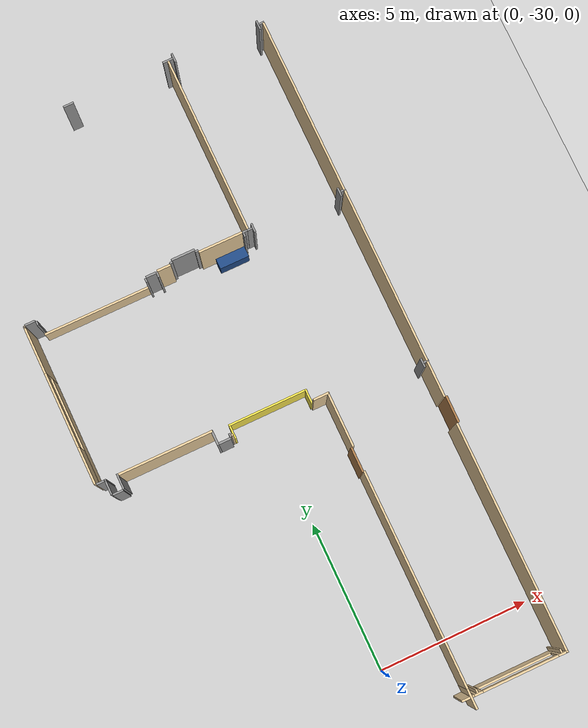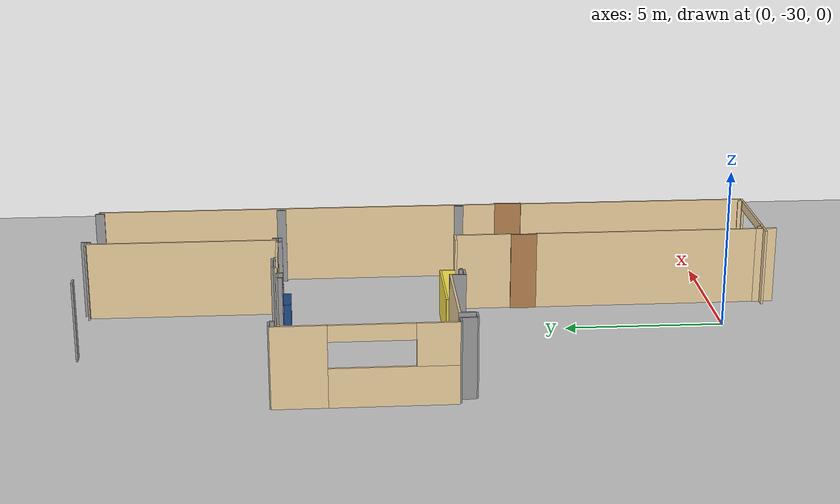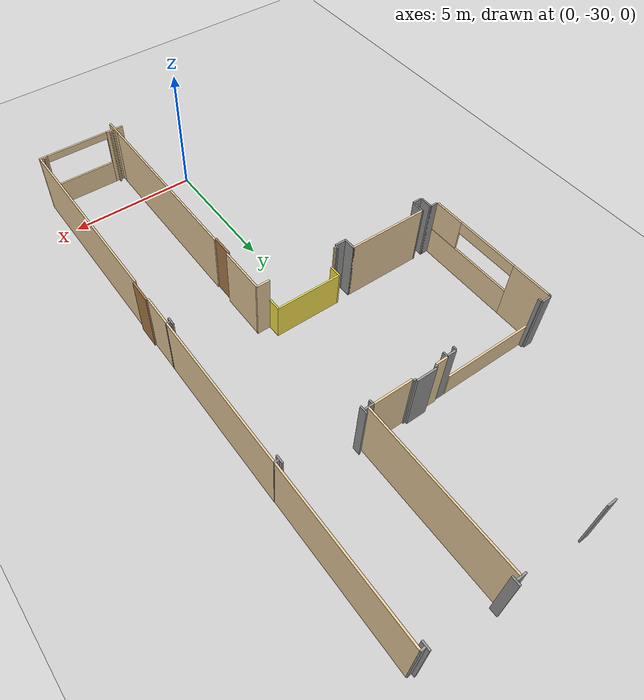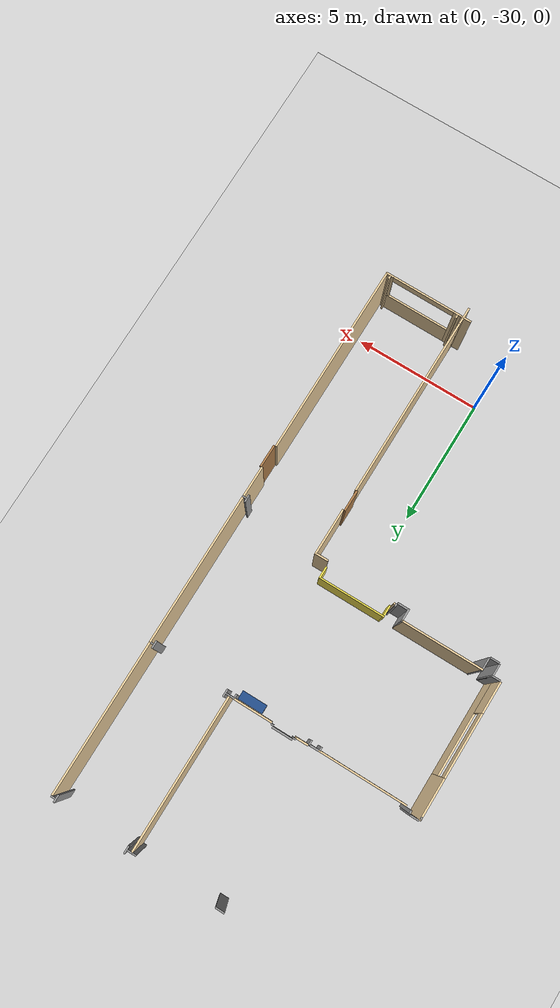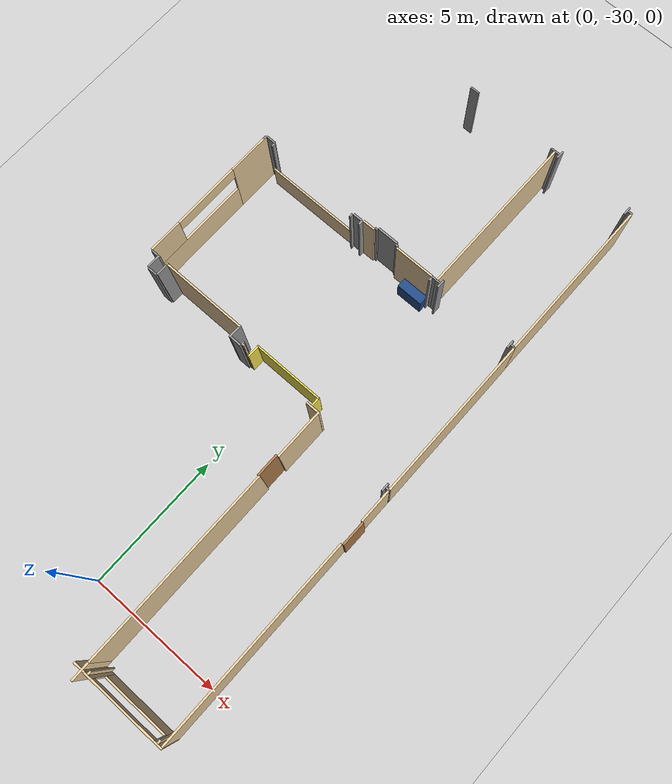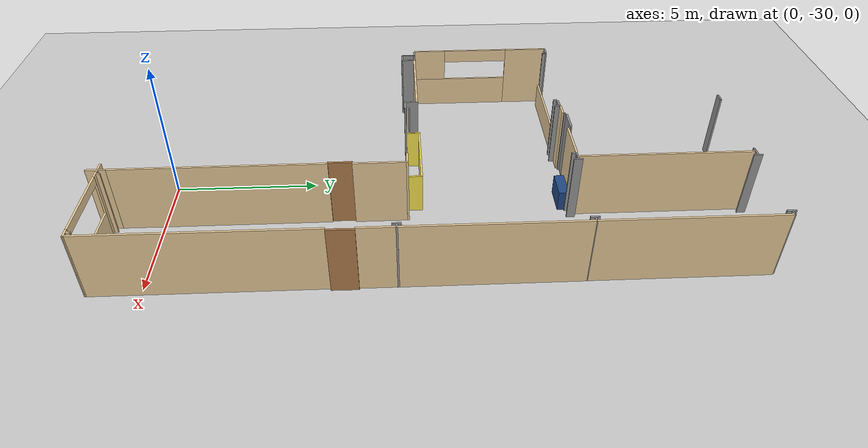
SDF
<sdf version="1.7">
 <world name="default">
  <model name="ground_plane">
   <static>1</static>
   <link name="link">
    <collision name="collision">
     <geometry><plane><normal>0 0 1</normal><size>100 100</size></plane></geometry>
     <surface>
      <contact><collide_bitmask>65535</collide_bitmask></contact>
      <friction><ode><mu>100</mu><mu2>50</mu2></ode></friction>
     </surface>
    </collision>
    <visual name="visual">
     <cast_shadows>0</cast_shadows>
     <geometry><plane><normal>0 0 1</normal><size>100 100</size></plane></geometry>
     <material>
      <script><uri>file://media/materials/scripts/gazebo.material</uri><name>Gazebo/Grey</name></script>
     </material>
    </visual>
   </link>
  </model>
  <model name="Fakulte_koridor">
   <pose>-0.108629 -0.105707 0 0 -0 0</pose>
   <link name="Wall_19">
    <collision name="Wall_19_Collision">
     <geometry><box><size>0.888609 0.07 2.5</size></box></geometry>
     <pose>0 0 1.25 0 -0 0</pose>
    </collision>
    <visual name="Wall_19_Visual">
     <pose>0 0 1.25 0 -0 0</pose>
     <geometry><box><size>0.888609 0.07 2.5</size></box></geometry>
     <material>
      <script><uri>file://media/materials/scripts/gazebo.material</uri><name>Gazebo/Wood</name></script>
      <ambient>1 1 1 1</ambient>
     </material>
     <meta><layer>0</layer></meta>
    </visual>
    <pose>5.37182 -23.6049 0 0 -0 1.56296</pose>
   </link>
   <link name="Wall_25">
    <collision name="Wall_25_Collision">
     <geometry><box><size>1.20759 0.07 2.5</size></box></geometry>
     <pose>0 0 1.25 0 -0 0</pose>
    </collision>
    <visual name="Wall_25_Visual">
     <pose>0 0 1.25 0 -0 0</pose>
     <geometry><box><size>1.20759 0.07 2.5</size></box></geometry>
     <material>
      <script><uri>file://media/materials/scripts/gazebo.material</uri><name>Gazebo/Grey</name></script>
      <ambient>0.921569 0.807843 0.615686 1</ambient>
     </material>
     <meta><layer>0</layer></meta>
    </visual>
    <pose>5.31964 -22.5654 0 0 -0 1.56914</pose>
   </link>
   <link name="Wall_3">
    <pose>3.77784 -31.5921 0 0 -0 -0.00309</pose>
    <visual name="Wall_3_Visual_0">
     <pose>-1.40844 0 1.25 0 -0 0</pose>
     <geometry><box><size>0.287186 0.07 2.5</size></box></geometry>
     <material>
      <script><uri>file://media/materials/scripts/gazebo.material</uri><name>Gazebo/Grey</name></script>
      <ambient>0.921569 0.807843 0.615686 1</ambient>
     </material>
     <meta><layer>0</layer></meta>
    </visual>
    <collision name="Wall_3_Collision_0">
     <geometry><box><size>0.287186 0.07 2.5</size></box></geometry>
     <pose>-1.40844 0 1.25 0 -0 0</pose>
    </collision>
    <visual name="Wall_3_Visual_1">
     <pose>0.143593 0 0.5 0 -0 0</pose>
     <geometry><box><size>2.81688 0.07 1</size></box></geometry>
     <material>
      <script><uri>file://media/materials/scripts/gazebo.material</uri><name>Gazebo/Grey</name></script>
      <ambient>0.921569 0.807843 0.615686 1</ambient>
     </material>
     <meta><layer>0</layer></meta>
    </visual>
    <collision name="Wall_3_Collision_1">
     <geometry><box><size>2.81688 0.07 1</size></box></geometry>
     <pose>0.143593 0 0.5 0 -0 0</pose>
    </collision>
    <visual name="Wall_3_Visual_2">
     <pose>1.39359 0 1.75 0 -0 0</pose>
     <geometry><box><size>0.316883 0.07 1.5</size></box></geometry>
     <material>
      <script><uri>file://media/materials/scripts/gazebo.material</uri><name>Gazebo/Grey</name></script>
      <ambient>0.921569 0.807843 0.615686 1</ambient>
     </material>
     <meta><layer>0</layer></meta>
    </visual>
    <collision name="Wall_3_Collision_2">
     <geometry><box><size>0.316883 0.07 1.5</size></box></geometry>
     <pose>1.39359 0 1.75 0 -0 0</pose>
    </collision>
    <visual name="Wall_3_Visual_3">
     <pose>-0.014849 0 2.35 0 -0 0</pose>
     <geometry><box><size>2.5 0.07 0.3</size></box></geometry>
     <material>
      <script><uri>file://media/materials/scripts/gazebo.material</uri><name>Gazebo/Grey</name></script>
      <ambient>0.921569 0.807843 0.615686 1</ambient>
     </material>
     <meta><layer>0</layer></meta>
    </visual>
    <collision name="Wall_3_Collision_3">
     <geometry><box><size>2.5 0.07 0.3</size></box></geometry>
     <pose>-0.014849 0 2.35 0 -0 0</pose>
    </collision>
   </link>
   <link name="Wall_34">
    <collision name="Wall_34_Collision">
     <geometry><box><size>0.299516 0.06 2.5</size></box></geometry>
     <pose>0 0 1.25 0 -0 0</pose>
    </collision>
    <visual name="Wall_34_Visual">
     <pose>0 0 1.25 0 -0 0</pose>
     <geometry><box><size>0.299516 0.06 2.5</size></box></geometry>
     <material>
      <script><uri>file://media/materials/scripts/gazebo.material</uri><name>Gazebo/Grey</name></script>
      <ambient>0.180392 0.203922 0.211765 1</ambient>
     </material>
     <meta><layer>0</layer></meta>
    </visual>
    <pose>5.17391 -21.9441 0 0 -0 -1.56569</pose>
   </link>
   <link name="Wall_346">
    <collision name="Wall_346_Collision">
     <geometry><box><size>0.175 0.06 2.5</size></box></geometry>
     <pose>0 0 1.25 0 -0 0</pose>
    </collision>
    <visual name="Wall_346_Visual">
     <pose>0 0 1.25 0 -0 0</pose>
     <geometry><box><size>0.175 0.06 2.5</size></box></geometry>
     <material>
      <script><uri>file://media/materials/scripts/gazebo.material</uri><name>Gazebo/Grey</name></script>
      <ambient>0.180392 0.203922 0.211765 1</ambient>
     </material>
     <meta><layer>0</layer></meta>
    </visual>
    <pose>5.27589 -21.9384 0 0 -0 0</pose>
   </link>
   <link name="Wall_38">
    <collision name="Wall_38_Collision">
     <geometry><box><size>5.9249 0.07 2.5</size></box></geometry>
     <pose>0 0 1.25 0 -0 0</pose>
    </collision>
    <visual name="Wall_38_Visual">
     <pose>0 0 1.25 0 -0 0</pose>
     <geometry><box><size>5.9249 0.07 2.5</size></box></geometry>
     <material>
      <script><uri>file://media/materials/scripts/gazebo.material</uri><name>Gazebo/Grey</name></script>
      <ambient>0.921569 0.807843 0.615686 1</ambient>
     </material>
     <meta><layer>0</layer></meta>
    </visual>
    <pose>5.3251 -18.9749 0 0 -0 1.57052</pose>
   </link>
   <link name="Wall_380">
    <collision name="Wall_380_Collision">
     <geometry><box><size>0.35 0.06 2.5</size></box></geometry>
     <pose>0 0 1.25 0 -0 0</pose>
    </collision>
    <visual name="Wall_380_Visual">
     <pose>0 0 1.25 0 -0 0</pose>
     <geometry><box><size>0.35 0.06 2.5</size></box></geometry>
     <material>
      <script><uri>file://media/materials/scripts/gazebo.material</uri><name>Gazebo/Grey</name></script>
      <ambient>1 1 1 1</ambient>
     </material>
     <meta><layer>0</layer></meta>
    </visual>
    <pose>-1.34421 -9.88463 0 0 -0 0</pose>
   </link>
   <link name="Wall_388">
    <collision name="Wall_388_Collision">
     <geometry><box><size>0.35 0.06 2.5</size></box></geometry>
     <pose>0 0 1.25 0 -0 0</pose>
    </collision>
    <visual name="Wall_388_Visual">
     <pose>0 0 1.25 0 -0 0</pose>
     <geometry><box><size>0.35 0.06 2.5</size></box></geometry>
     <material>
      <script><uri>file://media/materials/scripts/gazebo.material</uri><name>Gazebo/Grey</name></script>
      <ambient>0.180392 0.203922 0.211765 1</ambient>
     </material>
     <meta><layer>0</layer></meta>
    </visual>
    <pose>2.07737 -9.89165 0 0 -0 0</pose>
   </link>
   <link name="Wall_390">
    <collision name="Wall_390_Collision">
     <geometry><box><size>0.3 0.06 2.5</size></box></geometry>
     <pose>0 0 1.25 0 -0 0</pose>
    </collision>
    <visual name="Wall_390_Visual">
     <pose>0 0 1.25 0 -0 0</pose>
     <geometry><box><size>0.3 0.06 2.5</size></box></geometry>
     <material>
      <script><uri>file://media/materials/scripts/gazebo.material</uri><name>Gazebo/Grey</name></script>
      <ambient>0.180392 0.203922 0.211765 1</ambient>
     </material>
     <meta><layer>0</layer></meta>
    </visual>
    <pose>2.27698 -9.88557 0 0 -0 -1.5708</pose>
   </link>
   <link name="Wall_392">
    <collision name="Wall_392_Collision">
     <geometry><box><size>5.995 0.07 2.5</size></box></geometry>
     <pose>0 0 1.25 0 -0 0</pose>
    </collision>
    <visual name="Wall_392_Visual">
     <pose>0 0 1.25 0 -0 0</pose>
     <geometry><box><size>5.995 0.07 2.5</size></box></geometry>
     <material>
      <script><uri>file://media/materials/scripts/gazebo.material</uri><name>Gazebo/Grey</name></script>
      <ambient>0.921569 0.807843 0.615686 1</ambient>
     </material>
     <meta><layer>0</layer></meta>
    </visual>
    <pose>2.07946 -12.8935 0 0 -0 -1.5708</pose>
   </link>
   <link name="Wall_394">
    <collision name="Wall_394_Collision">
     <geometry><box><size>0.175 0.06 2.5</size></box></geometry>
     <pose>0 0 1.25 0 -0 0</pose>
    </collision>
    <visual name="Wall_394_Visual">
     <pose>0 0 1.25 0 -0 0</pose>
     <geometry><box><size>0.175 0.06 2.5</size></box></geometry>
     <material>
      <script><uri>file://media/materials/scripts/gazebo.material</uri><name>Gazebo/Grey</name></script>
      <ambient>0.180392 0.203922 0.211765 1</ambient>
     </material>
     <meta><layer>0</layer></meta>
    </visual>
    <pose>2.13087 -15.9072 0 0 -0 0</pose>
   </link>
   <link name="Wall_396">
    <collision name="Wall_396_Collision">
     <geometry><box><size>0.3 0.06 2.5</size></box></geometry>
     <pose>0 0 1.25 0 -0 0</pose>
    </collision>
    <visual name="Wall_396_Visual">
     <pose>0 0 1.25 0 -0 0</pose>
     <geometry><box><size>0.3 0.06 2.5</size></box></geometry>
     <material>
      <script><uri>file://media/materials/scripts/gazebo.material</uri><name>Gazebo/Grey</name></script>
      <ambient>0.180392 0.203922 0.211765 1</ambient>
     </material>
     <meta><layer>0</layer></meta>
    </visual>
    <pose>2.24681 -15.9111 0 0 -0 -1.5708</pose>
   </link>
   <link name="Wall_398">
    <collision name="Wall_398_Collision">
     <geometry><box><size>0.175 0.06 2.5</size></box></geometry>
     <pose>0 0 1.25 0 -0 0</pose>
    </collision>
    <visual name="Wall_398_Visual">
     <pose>0 0 1.25 0 -0 0</pose>
     <geometry><box><size>0.175 0.06 2.5</size></box></geometry>
     <material>
      <script><uri>file://media/materials/scripts/gazebo.material</uri><name>Gazebo/Grey</name></script>
      <ambient>0.180392 0.203922 0.211765 1</ambient>
     </material>
     <meta><layer>0</layer></meta>
    </visual>
    <pose>1.95852 -15.9057 0 0 -0 0</pose>
   </link>
   <link name="Wall_402">
    <collision name="Wall_402_Collision">
     <geometry><box><size>0.135 0.06 2.5</size></box></geometry>
     <pose>0 0 1.25 0 -0 0</pose>
    </collision>
    <visual name="Wall_402_Visual">
     <pose>0 0 1.25 0 -0 0</pose>
     <geometry><box><size>0.135 0.06 2.5</size></box></geometry>
     <material>
      <script><uri>file://media/materials/scripts/gazebo.material</uri><name>Gazebo/Grey</name></script>
      <ambient>0.180392 0.203922 0.211765 1</ambient>
     </material>
     <meta><layer>0</layer></meta>
    </visual>
    <pose>1.90222 -16.0031 0 0 -0 -1.5708</pose>
   </link>
   <link name="Wall_404">
    <collision name="Wall_404_Collision">
     <geometry><box><size>1 0.35 0.75</size></box></geometry>
     <pose>0 0 0.375 0 -0 0</pose>
    </collision>
    <visual name="Wall_404_Visual">
     <pose>0 0 0.375 0 -0 0</pose>
     <geometry><box><size>1 0.35 0.75</size></box></geometry>
     <material>
      <script><uri>file://media/materials/scripts/gazebo.material</uri><name>Gazebo/Grey</name></script>
      <ambient>0.12549 0.290196 0.529412 1</ambient>
     </material>
     <meta><layer>0</layer></meta>
    </visual>
    <pose>1.36663 -16.1303 0 0 -0 0</pose>
   </link>
   <link name="Wall_406">
    <collision name="Wall_406_Collision">
     <geometry><box><size>1.48 0.07 2.5</size></box></geometry>
     <pose>0 0 1.25 0 -0 0</pose>
    </collision>
    <visual name="Wall_406_Visual">
     <pose>0 0 1.25 0 -0 0</pose>
     <geometry><box><size>1.48 0.07 2.5</size></box></geometry>
     <material>
      <script><uri>file://media/materials/scripts/gazebo.material</uri><name>Gazebo/Grey</name></script>
      <ambient>0.921569 0.807843 0.615686 1</ambient>
     </material>
     <meta><layer>0</layer></meta>
    </visual>
    <pose>1.13984 -15.8978 0 0 -0 0</pose>
   </link>
   <link name="Wall_408">
    <collision name="Wall_408_Collision">
     <geometry><box><size>0.105 0.06 2.5</size></box></geometry>
     <pose>0 0 1.25 0 -0 0</pose>
    </collision>
    <visual name="Wall_408_Visual">
     <pose>0 0 1.25 0 -0 0</pose>
     <geometry><box><size>0.105 0.06 2.5</size></box></geometry>
     <material>
      <script><uri>file://media/materials/scripts/gazebo.material</uri><name>Gazebo/Grey</name></script>
      <ambient>1 1 1 1</ambient>
     </material>
     <meta><layer>0</layer></meta>
    </visual>
    <pose>0.351261 -15.8384 0 0 -0 0</pose>
   </link>
   <link name="Wall_410">
    <collision name="Wall_410_Collision">
     <geometry><box><size>0.79 0.07 2.5</size></box></geometry>
     <pose>0 0 1.25 0 -0 0</pose>
    </collision>
    <visual name="Wall_410_Visual">
     <pose>0 0 1.25 0 -0 0</pose>
     <geometry><box><size>0.79 0.07 2.5</size></box></geometry>
     <material>
      <script><uri>file://media/materials/scripts/gazebo.material</uri><name>Gazebo/Grey</name></script>
      <ambient>0.729412 0.741176 0.713726 1</ambient>
     </material>
     <meta><layer>0</layer></meta>
    </visual>
    <pose>-0.078233 -15.7717 0 0 -0 0</pose>
   </link>
   <link name="Wall_412">
    <collision name="Wall_412_Collision">
     <geometry><box><size>0.105 0.06 2.5</size></box></geometry>
     <pose>0 0 1.25 0 -0 0</pose>
    </collision>
    <visual name="Wall_412_Visual">
     <pose>0 0 1.25 0 -0 0</pose>
     <geometry><box><size>0.105 0.06 2.5</size></box></geometry>
     <material>
      <script><uri>file://media/materials/scripts/gazebo.material</uri><name>Gazebo/Grey</name></script>
      <ambient>0.729412 0.741176 0.713726 1</ambient>
     </material>
     <meta><layer>0</layer></meta>
    </visual>
    <pose>-0.515776 -15.8384 0 0 -0 0</pose>
   </link>
   <link name="Wall_414">
    <collision name="Wall_414_Collision">
     <geometry><box><size>0.465 0.07 2.5</size></box></geometry>
     <pose>0 0 1.25 0 -0 0</pose>
    </collision>
    <visual name="Wall_414_Visual">
     <pose>0 0 1.25 0 -0 0</pose>
     <geometry><box><size>0.465 0.07 2.5</size></box></geometry>
     <material>
      <script><uri>file://media/materials/scripts/gazebo.material</uri><name>Gazebo/Grey</name></script>
      <ambient>0.921569 0.807843 0.615686 1</ambient>
     </material>
     <meta><layer>0</layer></meta>
    </visual>
    <pose>-0.785409 -15.8939 0 0 -0 0</pose>
   </link>
   <link name="Wall_416">
    <collision name="Wall_416_Collision">
     <geometry><box><size>0.18 0.06 2.5</size></box></geometry>
     <pose>0 0 1.25 0 -0 0</pose>
    </collision>
    <visual name="Wall_416_Visual">
     <pose>0 0 1.25 0 -0 0</pose>
     <geometry><box><size>0.18 0.06 2.5</size></box></geometry>
     <material>
      <script><uri>file://media/materials/scripts/gazebo.material</uri><name>Gazebo/Grey</name></script>
      <ambient>0.180392 0.203922 0.211765 1</ambient>
     </material>
     <meta><layer>0</layer></meta>
    </visual>
    <pose>-1.03813 -16.0098 0 0 -0 -1.5708</pose>
   </link>
   <link name="Wall_418">
    <collision name="Wall_418_Collision">
     <geometry><box><size>0.345 0.07 2.5</size></box></geometry>
     <pose>0 0 1.25 0 -0 0</pose>
    </collision>
    <visual name="Wall_418_Visual">
     <pose>0 0 1.25 0 -0 0</pose>
     <geometry><box><size>0.345 0.07 2.5</size></box></geometry>
     <material>
      <script><uri>file://media/materials/scripts/gazebo.material</uri><name>Gazebo/Grey</name></script>
      <ambient>0.180392 0.203922 0.211765 1</ambient>
     </material>
     <meta><layer>0</layer></meta>
    </visual>
    <pose>-1.23446 -15.9273 0 0 -0 0</pose>
   </link>
   <link name="Wall_420">
    <collision name="Wall_420_Collision">
     <geometry><box><size>0.13 0.06 2.5</size></box></geometry>
     <pose>0 0 1.25 0 -0 0</pose>
    </collision>
    <visual name="Wall_420_Visual">
     <pose>0 0 1.25 0 -0 0</pose>
     <geometry><box><size>0.13 0.06 2.5</size></box></geometry>
     <material>
      <script><uri>file://media/materials/scripts/gazebo.material</uri><name>Gazebo/Grey</name></script>
      <ambient>0.180392 0.203922 0.211765 1</ambient>
     </material>
     <meta><layer>0</layer></meta>
    </visual>
    <pose>-1.43866 -16.0179 0 0 -0 -1.5708</pose>
   </link>
   <link name="Wall_422">
    <collision name="Wall_422_Collision">
     <geometry><box><size>3.591 0.07 1</size></box></geometry>
     <pose>0 0 0.5 0 -0 0</pose>
    </collision>
    <visual name="Wall_422_Visual">
     <pose>0 0 0.5 0 -0 0</pose>
     <geometry><box><size>3.591 0.07 1</size></box></geometry>
     <material>
      <script><uri>file://media/materials/scripts/gazebo.material</uri><name>Gazebo/Grey</name></script>
      <ambient>0.921569 0.807843 0.615686 1</ambient>
     </material>
     <meta><layer>0</layer></meta>
    </visual>
    <pose>-3.25787 -15.9273 0 0 -0 0</pose>
   </link>
   <link name="Wall_424">
    <collision name="Wall_424_Collision">
     <geometry><box><size>0.13 0.06 2.5</size></box></geometry>
     <pose>0 0 1.25 0 -0 0</pose>
    </collision>
    <visual name="Wall_424_Visual">
     <pose>0 0 1.25 0 -0 0</pose>
     <geometry><box><size>0.13 0.06 2.5</size></box></geometry>
     <material>
      <script><uri>file://media/materials/scripts/gazebo.material</uri><name>Gazebo/Grey</name></script>
      <ambient>0.180392 0.203922 0.211765 1</ambient>
     </material>
     <meta><layer>0</layer></meta>
    </visual>
    <pose>-5.01809 -15.8257 0 0 -0 1.5708</pose>
   </link>
   <link name="Wall_426">
    <collision name="Wall_426_Collision">
     <geometry><box><size>0.35 0.06 2.5</size></box></geometry>
     <pose>0 0 1.25 0 -0 0</pose>
    </collision>
    <visual name="Wall_426_Visual">
     <pose>0 0 1.25 0 -0 0</pose>
     <geometry><box><size>0.35 0.06 2.5</size></box></geometry>
     <material>
      <script><uri>file://media/materials/scripts/gazebo.material</uri><name>Gazebo/Grey</name></script>
      <ambient>0.180392 0.203922 0.211765 1</ambient>
     </material>
     <meta><layer>0</layer></meta>
    </visual>
    <pose>-5.21983 -15.7294 0 0 -0 0</pose>
   </link>
   <link name="Wall_428">
    <collision name="Wall_428_Collision">
     <geometry><box><size>0.13 0.06 2.5</size></box></geometry>
     <pose>0 0 1.25 0 -0 0</pose>
    </collision>
    <visual name="Wall_428_Visual">
     <pose>0 0 1.25 0 -0 0</pose>
     <geometry><box><size>0.13 0.06 2.5</size></box></geometry>
     <material>
      <script><uri>file://media/materials/scripts/gazebo.material</uri><name>Gazebo/Grey</name></script>
      <ambient>1 1 1 1</ambient>
     </material>
     <meta><layer>0</layer></meta>
    </visual>
    <pose>-5.41995 -15.8139 0 0 -0 -1.5708</pose>
   </link>
   <link name="Wall_430">
    <pose>-5.42353 -18.4139 0 0 -0 -1.5708</pose>
    <visual name="Wall_430_Visual_0">
     <pose>-1.86587 0 1.25 0 -0 0</pose>
     <geometry><box><size>1.61726 0.07 2.5</size></box></geometry>
     <material>
      <script><uri>file://media/materials/scripts/gazebo.material</uri><name>Gazebo/Grey</name></script>
      <ambient>0.921569 0.807843 0.615686 1</ambient>
     </material>
     <meta><layer>0</layer></meta>
    </visual>
    <collision name="Wall_430_Collision_0">
     <geometry><box><size>1.61726 0.07 2.5</size></box></geometry>
     <pose>-1.86587 0 1.25 0 -0 0</pose>
    </collision>
    <visual name="Wall_430_Visual_1">
     <pose>0.808629 0 0.6 0 -0 0</pose>
     <geometry><box><size>3.73174 0.07 1.2</size></box></geometry>
     <material>
      <script><uri>file://media/materials/scripts/gazebo.material</uri><name>Gazebo/Grey</name></script>
      <ambient>0.921569 0.807843 0.615686 1</ambient>
     </material>
     <meta><layer>0</layer></meta>
    </visual>
    <collision name="Wall_430_Collision_1">
     <geometry><box><size>3.73174 0.07 1.2</size></box></geometry>
     <pose>0.808629 0 0.6 0 -0 0</pose>
    </collision>
    <visual name="Wall_430_Visual_2">
     <pose>2.05863 0 1.85 0 -0 0</pose>
     <geometry><box><size>1.23174 0.07 1.3</size></box></geometry>
     <material>
      <script><uri>file://media/materials/scripts/gazebo.material</uri><name>Gazebo/Grey</name></script>
      <ambient>0.921569 0.807843 0.615686 1</ambient>
     </material>
     <meta><layer>0</layer></meta>
    </visual>
    <collision name="Wall_430_Collision_2">
     <geometry><box><size>1.23174 0.07 1.3</size></box></geometry>
     <pose>2.05863 0 1.85 0 -0 0</pose>
    </collision>
    <visual name="Wall_430_Visual_3">
     <pose>0.192759 0 2.25 0 -0 0</pose>
     <geometry><box><size>2.5 0.07 0.5</size></box></geometry>
     <material>
      <script><uri>file://media/materials/scripts/gazebo.material</uri><name>Gazebo/Grey</name></script>
      <ambient>0.921569 0.807843 0.615686 1</ambient>
     </material>
     <meta><layer>0</layer></meta>
    </visual>
    <collision name="Wall_430_Collision_3">
     <geometry><box><size>2.5 0.07 0.5</size></box></geometry>
     <pose>0.192759 0 2.25 0 -0 0</pose>
    </collision>
   </link>
   <link name="Wall_433">
    <collision name="Wall_433_Collision">
     <geometry><box><size>0.33 0.06 2.5</size></box></geometry>
     <pose>0 0 1.25 0 -0 0</pose>
    </collision>
    <visual name="Wall_433_Visual">
     <pose>0 0 1.25 0 -0 0</pose>
     <geometry><box><size>0.33 0.06 2.5</size></box></geometry>
     <material>
      <script><uri>file://media/materials/scripts/gazebo.material</uri><name>Gazebo/Grey</name></script>
      <ambient>1 1 1 1</ambient>
     </material>
     <meta><layer>0</layer></meta>
    </visual>
    <pose>-5.22644 -21.1119 0 0 -0 0</pose>
   </link>
   <link name="Wall_435">
    <collision name="Wall_435_Collision">
     <geometry><box><size>0.51 0.06 2.5</size></box></geometry>
     <pose>0 0 1.25 0 -0 0</pose>
    </collision>
    <visual name="Wall_435_Visual">
     <pose>0 0 1.25 0 -0 0</pose>
     <geometry><box><size>0.51 0.06 2.5</size></box></geometry>
     <material>
      <script><uri>file://media/materials/scripts/gazebo.material</uri><name>Gazebo/Grey</name></script>
      <ambient>0.180392 0.203922 0.211765 1</ambient>
     </material>
     <meta><layer>0</layer></meta>
    </visual>
    <pose>-5.09466 -21.3369 0 0 -0 -1.5708</pose>
   </link>
   <link name="Wall_437">
    <collision name="Wall_437_Collision">
     <geometry><box><size>0.35 0.06 2.5</size></box></geometry>
     <pose>0 0 1.25 0 -0 0</pose>
    </collision>
    <visual name="Wall_437_Visual">
     <pose>0 0 1.25 0 -0 0</pose>
     <geometry><box><size>0.35 0.06 2.5</size></box></geometry>
     <material>
      <script><uri>file://media/materials/scripts/gazebo.material</uri><name>Gazebo/Grey</name></script>
      <ambient>0.180392 0.203922 0.211765 1</ambient>
     </material>
     <meta><layer>0</layer></meta>
    </visual>
    <pose>-4.89408 -21.6121 0 0 -0 0</pose>
   </link>
   <link name="Wall_439">
    <collision name="Wall_439_Collision">
     <geometry><box><size>0.51 0.06 2.5</size></box></geometry>
     <pose>0 0 1.25 0 -0 0</pose>
    </collision>
    <visual name="Wall_439_Visual">
     <pose>0 0 1.25 0 -0 0</pose>
     <geometry><box><size>0.51 0.06 2.5</size></box></geometry>
     <material>
      <script><uri>file://media/materials/scripts/gazebo.material</uri><name>Gazebo/Grey</name></script>
      <ambient>0.180392 0.203922 0.211765 1</ambient>
     </material>
     <meta><layer>0</layer></meta>
    </visual>
    <pose>-4.69449 -21.3369 0 0 -0 -1.5708</pose>
   </link>
   <link name="Wall_44">
    <collision name="Wall_44_Collision">
     <geometry><box><size>0.175 0.06 2.5</size></box></geometry>
     <pose>0 0 1.25 0 -0 0</pose>
    </collision>
    <visual name="Wall_44_Visual">
     <pose>0 0 1.25 0 -0 0</pose>
     <geometry><box><size>0.175 0.06 2.5</size></box></geometry>
     <material>
      <script><uri>file://media/materials/scripts/gazebo.material</uri><name>Gazebo/Grey</name></script>
      <ambient>0.180392 0.203922 0.211765 1</ambient>
     </material>
     <meta><layer>0</layer></meta>
    </visual>
    <pose>5.26813 -16.0113 0 0 -0 3.14159</pose>
   </link>
   <link name="Wall_441">
    <collision name="Wall_441_Collision">
     <geometry><box><size>3.186 0.07 2.5</size></box></geometry>
     <pose>0 0 1.25 0 -0 0</pose>
    </collision>
    <visual name="Wall_441_Visual">
     <pose>0 0 1.25 0 -0 0</pose>
     <geometry><box><size>3.186 0.07 2.5</size></box></geometry>
     <material>
      <script><uri>file://media/materials/scripts/gazebo.material</uri><name>Gazebo/Grey</name></script>
      <ambient>0.921569 0.807843 0.615686 1</ambient>
     </material>
     <meta><layer>0</layer></meta>
    </visual>
    <pose>-3.12538 -21.123 0 0 -0 0</pose>
   </link>
   <link name="Wall_443">
    <collision name="Wall_443_Collision">
     <geometry><box><size>0.505 0.07 2.5</size></box></geometry>
     <pose>0 0 1.25 0 -0 0</pose>
    </collision>
    <visual name="Wall_443_Visual">
     <pose>0 0 1.25 0 -0 0</pose>
     <geometry><box><size>0.505 0.07 2.5</size></box></geometry>
     <material>
      <script><uri>file://media/materials/scripts/gazebo.material</uri><name>Gazebo/Grey</name></script>
      <ambient>0.180392 0.203922 0.211765 1</ambient>
     </material>
     <meta><layer>0</layer></meta>
    </visual>
    <pose>-1.54871 -21.3405 0 0 -0 -1.5708</pose>
   </link>
   <link name="Wall_445">
    <collision name="Wall_445_Collision">
     <geometry><box><size>0.405 0.07 2.5</size></box></geometry>
     <pose>0 0 1.25 0 -0 0</pose>
    </collision>
    <visual name="Wall_445_Visual">
     <pose>0 0 1.25 0 -0 0</pose>
     <geometry><box><size>0.405 0.07 2.5</size></box></geometry>
     <material>
      <script><uri>file://media/materials/scripts/gazebo.material</uri><name>Gazebo/Grey</name></script>
      <ambient>0.180392 0.203922 0.211765 1</ambient>
     </material>
     <meta><layer>0</layer></meta>
    </visual>
    <pose>-1.31691 -21.5583 0 0 -0 0</pose>
   </link>
   <link name="Wall_447">
    <collision name="Wall_447_Collision">
     <geometry><box><size>0.128 0.06 2.5</size></box></geometry>
     <pose>0 0 1.25 0 -0 0</pose>
    </collision>
    <visual name="Wall_447_Visual">
     <pose>0 0 1.25 0 -0 0</pose>
     <geometry><box><size>0.128 0.06 2.5</size></box></geometry>
     <material>
      <script><uri>file://media/materials/scripts/gazebo.material</uri><name>Gazebo/Grey</name></script>
      <ambient>0.180392 0.203922 0.211765 1</ambient>
     </material>
     <meta><layer>0</layer></meta>
    </visual>
    <pose>-1.09834 -21.4678 0 0 -0 -1.5708</pose>
   </link>
   <link name="Wall_449">
    <collision name="Wall_449_Collision">
     <geometry><box><size>0.07 0.06 2.5</size></box></geometry>
     <pose>0 0 1.25 0 -0 0</pose>
    </collision>
    <visual name="Wall_449_Visual">
     <pose>0 0 1.25 0 -0 0</pose>
     <geometry><box><size>0.07 0.06 2.5</size></box></geometry>
     <material>
      <script><uri>file://media/materials/scripts/gazebo.material</uri><name>Gazebo/Grey</name></script>
      <ambient>0.921569 0.807843 0.615686 1</ambient>
     </material>
     <meta><layer>0</layer></meta>
    </visual>
    <pose>-1.03776 -21.4894 0 0 -0 0</pose>
   </link>
   <link name="Wall_451">
    <collision name="Wall_451_Collision">
     <geometry><box><size>0.495 0.06 1.5</size></box></geometry>
     <pose>0 0 0.75 0 -0 0</pose>
    </collision>
    <visual name="Wall_451_Visual">
     <pose>0 0 0.75 0 -0 0</pose>
     <geometry><box><size>0.495 0.06 1.5</size></box></geometry>
     <material>
      <script><uri>file://media/materials/scripts/gazebo.material</uri><name>Gazebo/Grey</name></script>
      <ambient>0.988235 0.913725 0.309804 1</ambient>
     </material>
     <meta><layer>0</layer></meta>
    </visual>
    <pose>-0.976246 -21.2841 0 0 -0 -1.5708</pose>
   </link>
   <link name="Wall_453">
    <collision name="Wall_453_Collision">
     <geometry><box><size>2.67 0.06 1.5</size></box></geometry>
     <pose>0 0 0.75 0 -0 0</pose>
    </collision>
    <visual name="Wall_453_Visual">
     <pose>0 0 0.75 0 -0 0</pose>
     <geometry><box><size>2.67 0.06 1.5</size></box></geometry>
     <material>
      <script><uri>file://media/materials/scripts/gazebo.material</uri><name>Gazebo/Grey</name></script>
      <ambient>0.988235 0.913725 0.309804 1</ambient>
     </material>
     <meta><layer>0</layer></meta>
    </visual>
    <pose>0.327426 -21.0681 0 0 -0 0</pose>
   </link>
   <link name="Wall_455">
    <collision name="Wall_455_Collision">
     <geometry><box><size>0.495 0.06 1.5</size></box></geometry>
     <pose>0 0 0.75 0 -0 0</pose>
    </collision>
    <visual name="Wall_455_Visual">
     <pose>0 0 0.75 0 -0 0</pose>
     <geometry><box><size>0.495 0.06 1.5</size></box></geometry>
     <material>
      <script><uri>file://media/materials/scripts/gazebo.material</uri><name>Gazebo/Grey</name></script>
      <ambient>0.988235 0.913725 0.309804 1</ambient>
     </material>
     <meta><layer>0</layer></meta>
    </visual>
    <pose>1.63648 -21.2911 0 0 -0 -1.5708</pose>
   </link>
   <link name="Wall_457">
    <collision name="Wall_457_Collision">
     <geometry><box><size>0.535 0.07 2.5</size></box></geometry>
     <pose>0 0 1.25 0 -0 0</pose>
    </collision>
    <visual name="Wall_457_Visual">
     <pose>0 0 1.25 0 -0 0</pose>
     <geometry><box><size>0.535 0.07 2.5</size></box></geometry>
     <material>
      <script><uri>file://media/materials/scripts/gazebo.material</uri><name>Gazebo/Grey</name></script>
      <ambient>0.921569 0.807843 0.615686 1</ambient>
     </material>
     <meta><layer>0</layer></meta>
    </visual>
    <pose>1.91675 -21.5584 0 0 -0 0</pose>
   </link>
   <link name="Wall_459">
    <collision name="Wall_459_Collision">
     <geometry><box><size>1.845 0.07 2.5</size></box></geometry>
     <pose>0 0 1.25 0 -0 0</pose>
    </collision>
    <visual name="Wall_459_Visual">
     <pose>0 0 1.25 0 -0 0</pose>
     <geometry><box><size>1.845 0.07 2.5</size></box></geometry>
     <material>
      <script><uri>file://media/materials/scripts/gazebo.material</uri><name>Gazebo/Grey</name></script>
      <ambient>0.921569 0.807843 0.615686 1</ambient>
     </material>
     <meta><layer>0</layer></meta>
    </visual>
    <pose>2.14772 -22.4463 0 0 -0 -1.5708</pose>
   </link>
   <link name="Wall_46">
    <collision name="Wall_46_Collision">
     <geometry><box><size>0.3 0.06 2.5</size></box></geometry>
     <pose>0 0 1.25 0 -0 0</pose>
    </collision>
    <visual name="Wall_46_Visual">
     <pose>0 0 1.25 0 -0 0</pose>
     <geometry><box><size>0.3 0.06 2.5</size></box></geometry>
     <material>
      <script><uri>file://media/materials/scripts/gazebo.material</uri><name>Gazebo/Grey</name></script>
      <ambient>0.180392 0.203922 0.211765 1</ambient>
     </material>
     <meta><layer>0</layer></meta>
    </visual>
    <pose>5.15406 -16.0166 0 0 -0 -1.5708</pose>
   </link>
   <link name="Wall_461">
    <collision name="Wall_461_Collision">
     <geometry><box><size>0.83 0.07 2.5</size></box></geometry>
     <pose>0 0 1.25 0 -0 0</pose>
    </collision>
    <visual name="Wall_461_Visual">
     <pose>0 0 1.25 0 -0 0</pose>
     <geometry><box><size>0.83 0.07 2.5</size></box></geometry>
     <material>
      <script><uri>file://media/materials/scripts/gazebo.material</uri><name>Gazebo/Wood</name></script>
      <ambient>1 1 1 1</ambient>
     </material>
     <meta><layer>0</layer></meta>
    </visual>
    <pose>2.08055 -23.7749 0 0 -0 -1.5708</pose>
   </link>
   <link name="Wall_463">
    <collision name="Wall_463_Collision">
     <geometry><box><size>7.151 0.07 2.5</size></box></geometry>
     <pose>0 0 1.25 0 -0 0</pose>
    </collision>
    <visual name="Wall_463_Visual">
     <pose>0 0 1.25 0 -0 0</pose>
     <geometry><box><size>7.151 0.07 2.5</size></box></geometry>
     <material>
      <script><uri>file://media/materials/scripts/gazebo.material</uri><name>Gazebo/Grey</name></script>
      <ambient>0.921569 0.807843 0.615686 1</ambient>
     </material>
     <meta><layer>0</layer></meta>
    </visual>
    <pose>2.12663 -27.7428 0 0 -0 -1.5708</pose>
   </link>
   <link name="Wall_467">
    <collision name="Wall_467_Collision">
     <geometry><box><size>0.67 0.07 2.5</size></box></geometry>
     <pose>0 0 1.25 0 -0 0</pose>
    </collision>
    <visual name="Wall_467_Visual">
     <pose>0 0 1.25 0 -0 0</pose>
     <geometry><box><size>0.67 0.07 2.5</size></box></geometry>
     <material>
      <script><uri>file://media/materials/scripts/gazebo.material</uri><name>Gazebo/Grey</name></script>
      <ambient>0.921569 0.807843 0.615686 1</ambient>
     </material>
     <meta><layer>0</layer></meta>
    </visual>
    <pose>2.12583 -31.6519 0 0 -0 -1.5708</pose>
   </link>
   <link name="Wall_469">
    <collision name="Wall_469_Collision">
     <geometry><box><size>0.42 0.07 2.5</size></box></geometry>
     <pose>0 0 1.25 0 -0 0</pose>
    </collision>
    <visual name="Wall_469_Visual">
     <pose>0 0 1.25 0 -0 0</pose>
     <geometry><box><size>0.42 0.07 2.5</size></box></geometry>
     <material>
      <script><uri>file://media/materials/scripts/gazebo.material</uri><name>Gazebo/Grey</name></script>
      <ambient>0.921569 0.807843 0.615686 1</ambient>
     </material>
     <meta><layer>0</layer></meta>
    </visual>
    <pose>2.01739 -31.5822 0 0 -0 0</pose>
   </link>
   <link name="Wall_471">
    <collision name="Wall_471_Collision">
     <geometry><box><size>0.13 0.06 2.5</size></box></geometry>
     <pose>0 0 1.25 0 -0 0</pose>
    </collision>
    <visual name="Wall_471_Visual">
     <pose>0 0 1.25 0 -0 0</pose>
     <geometry><box><size>0.13 0.06 2.5</size></box></geometry>
     <material>
      <script><uri>file://media/materials/scripts/gazebo.material</uri><name>Gazebo/Grey</name></script>
      <ambient>0.921569 0.807843 0.615686 1</ambient>
     </material>
     <meta><layer>0</layer></meta>
    </visual>
    <pose>2.34732 -31.4927 0 0 -0 -1.5708</pose>
   </link>
   <link name="Wall_473">
    <collision name="Wall_473_Collision">
     <geometry><box><size>0.13 0.06 2.5</size></box></geometry>
     <pose>0 0 1.25 0 -0 0</pose>
    </collision>
    <visual name="Wall_473_Visual">
     <pose>0 0 1.25 0 -0 0</pose>
     <geometry><box><size>0.13 0.06 2.5</size></box></geometry>
     <material>
      <script><uri>file://media/materials/scripts/gazebo.material</uri><name>Gazebo/Grey</name></script>
      <ambient>0.921569 0.807843 0.615686 1</ambient>
     </material>
     <meta><layer>0</layer></meta>
    </visual>
    <pose>5.13462 -31.5023 0 0 -0 -1.5708</pose>
   </link>
   <link name="Wall_5">
    <collision name="Wall_5_Collision">
     <geometry><box><size>7.57872 0.07 2.5</size></box></geometry>
     <pose>0 0 1.25 0 -0 0</pose>
    </collision>
    <visual name="Wall_5_Visual">
     <pose>0 0 1.25 0 -0 0</pose>
     <geometry><box><size>7.57872 0.07 2.5</size></box></geometry>
     <material>
      <script><uri>file://media/materials/scripts/gazebo.material</uri><name>Gazebo/Grey</name></script>
      <ambient>0.921569 0.807843 0.615686 1</ambient>
     </material>
     <meta><layer>0</layer></meta>
    </visual>
    <pose>5.2995 -27.8424 0 0 -0 1.56956</pose>
   </link>
   <link name="Wall_52">
    <collision name="Wall_52_Collision">
     <geometry><box><size>5.995 0.07 2.5</size></box></geometry>
     <pose>0 0 1.25 0 -0 0</pose>
    </collision>
    <visual name="Wall_52_Visual">
     <pose>0 0 1.25 0 -0 0</pose>
     <geometry><box><size>5.995 0.07 2.5</size></box></geometry>
     <material>
      <script><uri>file://media/materials/scripts/gazebo.material</uri><name>Gazebo/Grey</name></script>
      <ambient>0.921569 0.807843 0.615686 1</ambient>
     </material>
     <meta><layer>0</layer></meta>
    </visual>
    <pose>5.31948 -13.0303 0 0 -0 1.5708</pose>
   </link>
   <link name="Wall_54">
    <collision name="Wall_54_Collision">
     <geometry><box><size>0.3 0.06 2.5</size></box></geometry>
     <pose>0 0 1.25 0 -0 0</pose>
    </collision>
    <visual name="Wall_54_Visual">
     <pose>0 0 1.25 0 -0 0</pose>
     <geometry><box><size>0.3 0.06 2.5</size></box></geometry>
     <material>
      <script><uri>file://media/materials/scripts/gazebo.material</uri><name>Gazebo/Grey</name></script>
      <ambient>0.180392 0.203922 0.211765 1</ambient>
     </material>
     <meta><layer>0</layer></meta>
    </visual>
    <pose>5.14201 -10.0373 0 0 -0 -1.5708</pose>
   </link>
   <link name="Wall_56">
    <collision name="Wall_56_Collision">
     <geometry><box><size>0.174282 0.06 2.5</size></box></geometry>
     <pose>0 0 1.25 0 -0 0</pose>
    </collision>
    <visual name="Wall_56_Visual">
     <pose>0 0 1.25 0 -0 0</pose>
     <geometry><box><size>0.174282 0.06 2.5</size></box></geometry>
     <material>
      <script><uri>file://media/materials/scripts/gazebo.material</uri><name>Gazebo/Grey</name></script>
      <ambient>0.180392 0.203922 0.211765 1</ambient>
     </material>
     <meta><layer>0</layer></meta>
    </visual>
    <pose>5.25486 -10.0207 0 0 -0 0.01864</pose>
   </link>
   <static>1</static>
  </model>
 </world>
</sdf>
